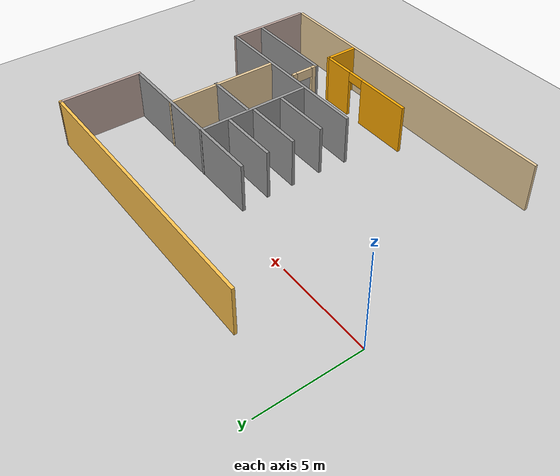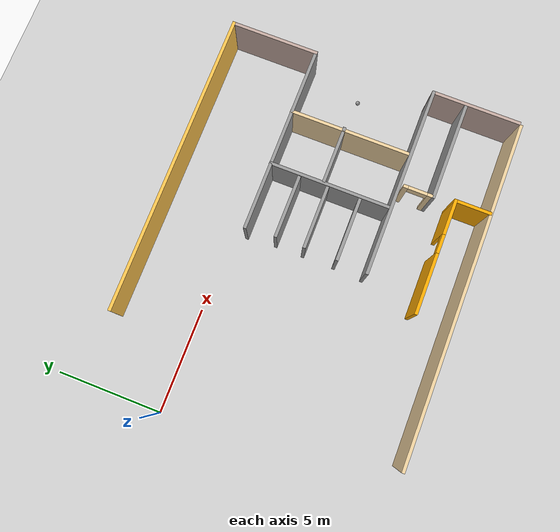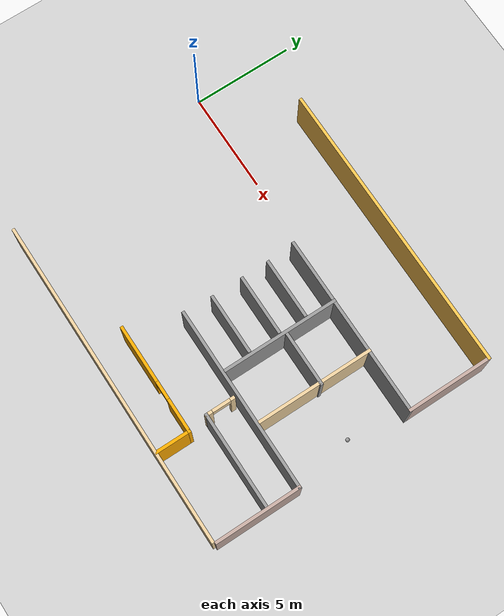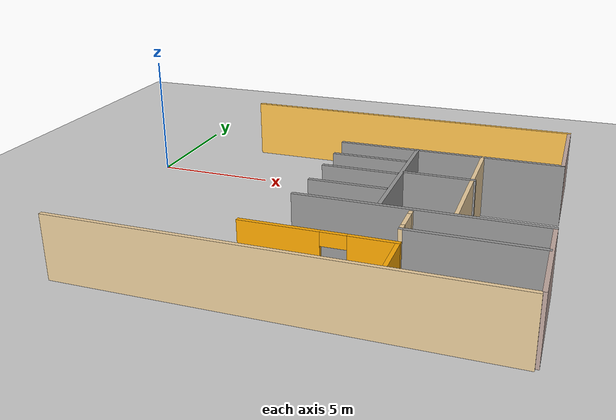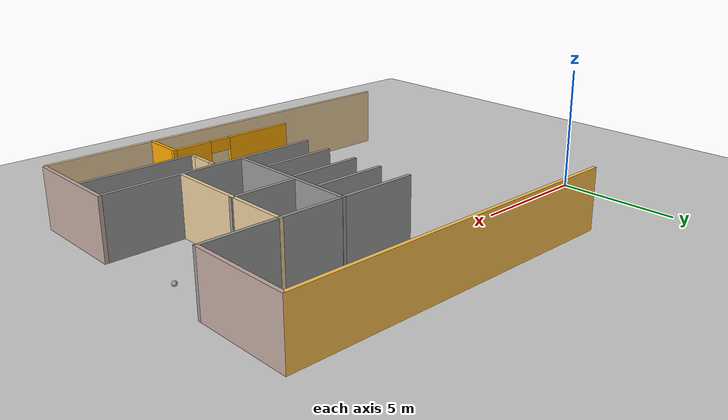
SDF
<sdf version="1.6">
 <world name="default">
  <model name="ground_plane">
   <static>1</static>
   <link name="link">
    <collision name="collision">
     <geometry><plane><normal>0 0 1</normal><size>100 100</size></plane></geometry>
     <surface><friction><ode><mu>100</mu><mu2>50</mu2></ode></friction></surface>
    </collision>
    <visual name="visual">
     <cast_shadows>0</cast_shadows>
     <geometry><plane><normal>0 0 1</normal><size>100 100</size></plane></geometry>
     <material>
      <script><uri>file://media/materials/scripts/gazebo.material</uri><name>Gazebo/Grey</name></script>
     </material>
    </visual>
   </link>
  </model>
  <model name="model">
   <link name="Wall_102">
    <pose>1.73212 1.51954 0 0 -0 0</pose>
    <visual name="Wall_102_Visual">
     <pose>0 0 1.25 0 -0 0</pose>
     <geometry><box><size>3 0.15 2.5</size></box></geometry>
     <material>
      <script><uri>file://media/materials/scripts/gazebo.material</uri><name>Gazebo/Grey</name></script>
      <ambient>1 1 1 1</ambient>
      <shader type="pixel"/>
      <diffuse>0.7 0.7 0.7 1</diffuse>
      <specular>0.01 0.01 0.01 1</specular>
      <emissive>0 0 0 1</emissive>
     </material>
     <meta><layer>0</layer></meta>
    </visual>
    <collision name="Wall_102_Collision">
     <pose>0 0 1.25 0 -0 0</pose>
     <geometry><box><size>3 0.15 2.5</size></box></geometry>
     <surface>
      <friction>
       <ode><mu>1</mu><mu2>1</mu2><fdir1>0 0 0</fdir1><slip1>0</slip1><slip2>0</slip2></ode>
       <torsional>
        <coefficient>1</coefficient>
        <patch_radius>0</patch_radius>
        <surface_radius>0</surface_radius>
        <use_patch_radius>1</use_patch_radius>
        <ode><slip>0</slip></ode>
       </torsional>
      </friction>
      <bounce><restitution_coefficient>0</restitution_coefficient><threshold>1e+06</threshold></bounce>
      <contact>
       <collide_without_contact>0</collide_without_contact>
       <collide_without_contact_bitmask>1</collide_without_contact_bitmask>
       <collide_bitmask>1</collide_bitmask>
       <ode>
        <soft_cfm>0</soft_cfm>
        <soft_erp>0.2</soft_erp>
        <kp>1e+13</kp>
        <kd>1</kd>
        <max_vel>0.01</max_vel>
        <min_depth>0</min_depth>
       </ode>
       <bullet>
        <split_impulse>1</split_impulse>
        <split_impulse_penetration_threshold>-0.01</split_impulse_penetration_threshold>
        <soft_cfm>0</soft_cfm>
        <soft_erp>0.2</soft_erp>
        <kp>1e+13</kp>
        <kd>1</kd>
       </bullet>
      </contact>
     </surface>
    </collision>
   </link>
   <link name="Wall_104">
    <pose>1.73212 0.165926 0 0 -0 0</pose>
    <visual name="Wall_104_Visual">
     <pose>0 0 1.25 0 -0 0</pose>
     <geometry><box><size>3 0.15 2.5</size></box></geometry>
     <material>
      <script><uri>file://media/materials/scripts/gazebo.material</uri><name>Gazebo/Grey</name></script>
      <ambient>1 1 1 1</ambient>
      <shader type="pixel"/>
      <diffuse>0.7 0.7 0.7 1</diffuse>
      <specular>0.01 0.01 0.01 1</specular>
      <emissive>0 0 0 1</emissive>
     </material>
     <meta><layer>0</layer></meta>
    </visual>
    <collision name="Wall_104_Collision">
     <pose>0 0 1.25 0 -0 0</pose>
     <geometry><box><size>3 0.15 2.5</size></box></geometry>
     <surface>
      <friction>
       <ode><mu>1</mu><mu2>1</mu2><fdir1>0 0 0</fdir1><slip1>0</slip1><slip2>0</slip2></ode>
       <torsional>
        <coefficient>1</coefficient>
        <patch_radius>0</patch_radius>
        <surface_radius>0</surface_radius>
        <use_patch_radius>1</use_patch_radius>
        <ode><slip>0</slip></ode>
       </torsional>
      </friction>
      <bounce><restitution_coefficient>0</restitution_coefficient><threshold>1e+06</threshold></bounce>
      <contact>
       <collide_without_contact>0</collide_without_contact>
       <collide_without_contact_bitmask>1</collide_without_contact_bitmask>
       <collide_bitmask>1</collide_bitmask>
       <ode>
        <soft_cfm>0</soft_cfm>
        <soft_erp>0.2</soft_erp>
        <kp>1e+13</kp>
        <kd>1</kd>
        <max_vel>0.01</max_vel>
        <min_depth>0</min_depth>
       </ode>
       <bullet>
        <split_impulse>1</split_impulse>
        <split_impulse_penetration_threshold>-0.01</split_impulse_penetration_threshold>
        <soft_cfm>0</soft_cfm>
        <soft_erp>0.2</soft_erp>
        <kp>1e+13</kp>
        <kd>1</kd>
       </bullet>
      </contact>
     </surface>
    </collision>
   </link>
   <link name="Wall_106">
    <pose>1.73212 -1.37227 0 0 -0 0</pose>
    <visual name="Wall_106_Visual">
     <pose>0 0 1.25 0 -0 0</pose>
     <geometry><box><size>3 0.15 2.5</size></box></geometry>
     <material>
      <script><uri>file://media/materials/scripts/gazebo.material</uri><name>Gazebo/Grey</name></script>
      <ambient>1 1 1 1</ambient>
      <shader type="pixel"/>
      <diffuse>0.7 0.7 0.7 1</diffuse>
      <specular>0.01 0.01 0.01 1</specular>
      <emissive>0 0 0 1</emissive>
     </material>
     <meta><layer>0</layer></meta>
    </visual>
    <collision name="Wall_106_Collision">
     <pose>0 0 1.25 0 -0 0</pose>
     <geometry><box><size>3 0.15 2.5</size></box></geometry>
     <surface>
      <friction>
       <ode><mu>1</mu><mu2>1</mu2><fdir1>0 0 0</fdir1><slip1>0</slip1><slip2>0</slip2></ode>
       <torsional>
        <coefficient>1</coefficient>
        <patch_radius>0</patch_radius>
        <surface_radius>0</surface_radius>
        <use_patch_radius>1</use_patch_radius>
        <ode><slip>0</slip></ode>
       </torsional>
      </friction>
      <bounce><restitution_coefficient>0</restitution_coefficient><threshold>1e+06</threshold></bounce>
      <contact>
       <collide_without_contact>0</collide_without_contact>
       <collide_without_contact_bitmask>1</collide_without_contact_bitmask>
       <collide_bitmask>1</collide_bitmask>
       <ode>
        <soft_cfm>0</soft_cfm>
        <soft_erp>0.2</soft_erp>
        <kp>1e+13</kp>
        <kd>1</kd>
        <max_vel>0.01</max_vel>
        <min_depth>0</min_depth>
       </ode>
       <bullet>
        <split_impulse>1</split_impulse>
        <split_impulse_penetration_threshold>-0.01</split_impulse_penetration_threshold>
        <soft_cfm>0</soft_cfm>
        <soft_erp>0.2</soft_erp>
        <kp>1e+13</kp>
        <kd>1</kd>
       </bullet>
      </contact>
     </surface>
    </collision>
   </link>
   <link name="Wall_13">
    <pose>1.86347 7.025 0 0 -0 0</pose>
    <visual name="Wall_13_Visual">
     <pose>0 0 1.25 0 -0 0</pose>
     <geometry><box><size>14.5 0.15 2.5</size></box></geometry>
     <material>
      <script><uri>file://media/materials/scripts/gazebo.material</uri><name>Gazebo/Grey</name></script>
      <ambient>1 0.764706 0.305882 1</ambient>
      <shader type="pixel"/>
      <diffuse>0.7 0.7 0.7 1</diffuse>
      <specular>0.01 0.01 0.01 1</specular>
      <emissive>0 0 0 1</emissive>
     </material>
     <meta><layer>0</layer></meta>
    </visual>
    <collision name="Wall_13_Collision">
     <pose>0 0 1.25 0 -0 0</pose>
     <geometry><box><size>14.5 0.15 2.5</size></box></geometry>
     <surface>
      <friction>
       <ode><mu>1</mu><mu2>1</mu2><fdir1>0 0 0</fdir1><slip1>0</slip1><slip2>0</slip2></ode>
       <torsional>
        <coefficient>1</coefficient>
        <patch_radius>0</patch_radius>
        <surface_radius>0</surface_radius>
        <use_patch_radius>1</use_patch_radius>
        <ode><slip>0</slip></ode>
       </torsional>
      </friction>
      <bounce><restitution_coefficient>0</restitution_coefficient><threshold>1e+06</threshold></bounce>
      <contact>
       <collide_without_contact>0</collide_without_contact>
       <collide_without_contact_bitmask>1</collide_without_contact_bitmask>
       <collide_bitmask>1</collide_bitmask>
       <ode>
        <soft_cfm>0</soft_cfm>
        <soft_erp>0.2</soft_erp>
        <kp>1e+13</kp>
        <kd>1</kd>
        <max_vel>0.01</max_vel>
        <min_depth>0</min_depth>
       </ode>
       <bullet>
        <split_impulse>1</split_impulse>
        <split_impulse_penetration_threshold>-0.01</split_impulse_penetration_threshold>
        <soft_cfm>0</soft_cfm>
        <soft_erp>0.2</soft_erp>
        <kp>1e+13</kp>
        <kd>1</kd>
       </bullet>
      </contact>
     </surface>
    </collision>
   </link>
   <link name="Wall_24">
    <pose>9.03847 4.975 0 0 0 -1.5708</pose>
    <visual name="Wall_24_Visual">
     <pose>0 0 1.25 0 -0 0</pose>
     <geometry><box><size>4.25 0.15 2.5</size></box></geometry>
     <material>
      <script><uri>file://media/materials/scripts/gazebo.material</uri><name>Gazebo/Grey</name></script>
      <ambient>0.760784 0.662745 0.627451 1</ambient>
      <shader type="pixel"/>
      <diffuse>0.7 0.7 0.7 1</diffuse>
      <specular>0.01 0.01 0.01 1</specular>
      <emissive>0 0 0 1</emissive>
     </material>
     <meta><layer>0</layer></meta>
    </visual>
    <collision name="Wall_24_Collision">
     <pose>0 0 1.25 0 -0 0</pose>
     <geometry><box><size>4.25 0.15 2.5</size></box></geometry>
     <surface>
      <friction>
       <ode><mu>1</mu><mu2>1</mu2><fdir1>0 0 0</fdir1><slip1>0</slip1><slip2>0</slip2></ode>
       <torsional>
        <coefficient>1</coefficient>
        <patch_radius>0</patch_radius>
        <surface_radius>0</surface_radius>
        <use_patch_radius>1</use_patch_radius>
        <ode><slip>0</slip></ode>
       </torsional>
      </friction>
      <bounce><restitution_coefficient>0</restitution_coefficient><threshold>1e+06</threshold></bounce>
      <contact>
       <collide_without_contact>0</collide_without_contact>
       <collide_without_contact_bitmask>1</collide_without_contact_bitmask>
       <collide_bitmask>1</collide_bitmask>
       <ode>
        <soft_cfm>0</soft_cfm>
        <soft_erp>0.2</soft_erp>
        <kp>1e+13</kp>
        <kd>1</kd>
        <max_vel>0.01</max_vel>
        <min_depth>0</min_depth>
       </ode>
       <bullet>
        <split_impulse>1</split_impulse>
        <split_impulse_penetration_threshold>-0.01</split_impulse_penetration_threshold>
        <soft_cfm>0</soft_cfm>
        <soft_erp>0.2</soft_erp>
        <kp>1e+13</kp>
        <kd>1</kd>
       </bullet>
      </contact>
     </surface>
    </collision>
   </link>
   <link name="Wall_26">
    <pose>4.61347 2.925 0 0 -0 3.14159</pose>
    <visual name="Wall_26_Visual">
     <pose>0 0 1.25 0 -0 0</pose>
     <geometry><box><size>9 0.15 2.5</size></box></geometry>
     <material>
      <script><uri>file://media/materials/scripts/gazebo.material</uri><name>Gazebo/Grey</name></script>
      <ambient>1 1 1 1</ambient>
      <shader type="pixel"/>
      <diffuse>0.7 0.7 0.7 1</diffuse>
      <specular>0.01 0.01 0.01 1</specular>
      <emissive>0 0 0 1</emissive>
     </material>
     <meta><layer>0</layer></meta>
    </visual>
    <collision name="Wall_26_Collision">
     <pose>0 0 1.25 0 -0 0</pose>
     <geometry><box><size>9 0.15 2.5</size></box></geometry>
     <surface>
      <friction>
       <ode><mu>1</mu><mu2>1</mu2><fdir1>0 0 0</fdir1><slip1>0</slip1><slip2>0</slip2></ode>
       <torsional>
        <coefficient>1</coefficient>
        <patch_radius>0</patch_radius>
        <surface_radius>0</surface_radius>
        <use_patch_radius>1</use_patch_radius>
        <ode><slip>0</slip></ode>
       </torsional>
      </friction>
      <bounce><restitution_coefficient>0</restitution_coefficient><threshold>1e+06</threshold></bounce>
      <contact>
       <collide_without_contact>0</collide_without_contact>
       <collide_without_contact_bitmask>1</collide_without_contact_bitmask>
       <collide_bitmask>1</collide_bitmask>
       <ode>
        <soft_cfm>0</soft_cfm>
        <soft_erp>0.2</soft_erp>
        <kp>1e+13</kp>
        <kd>1</kd>
        <max_vel>0.01</max_vel>
        <min_depth>0</min_depth>
       </ode>
       <bullet>
        <split_impulse>1</split_impulse>
        <split_impulse_penetration_threshold>-0.01</split_impulse_penetration_threshold>
        <soft_cfm>0</soft_cfm>
        <soft_erp>0.2</soft_erp>
        <kp>1e+13</kp>
        <kd>1</kd>
       </bullet>
      </contact>
     </surface>
    </collision>
   </link>
   <link name="Wall_31">
    <pose>4.68653 -2.80194 0 0 -0 3.14159</pose>
    <visual name="Wall_31_Visual">
     <pose>0 0 1.25 0 -0 0</pose>
     <geometry><box><size>9.1 0.15 2.5</size></box></geometry>
     <material>
      <script><uri>file://media/materials/scripts/gazebo.material</uri><name>Gazebo/Grey</name></script>
      <ambient>1 1 1 1</ambient>
      <shader type="pixel"/>
      <diffuse>0.7 0.7 0.7 1</diffuse>
      <specular>0.01 0.01 0.01 1</specular>
      <emissive>0 0 0 1</emissive>
     </material>
     <meta><layer>0</layer></meta>
    </visual>
    <collision name="Wall_31_Collision">
     <pose>0 0 1.25 0 -0 0</pose>
     <geometry><box><size>9.1 0.15 2.5</size></box></geometry>
     <surface>
      <friction>
       <ode><mu>1</mu><mu2>1</mu2><fdir1>0 0 0</fdir1><slip1>0</slip1><slip2>0</slip2></ode>
       <torsional>
        <coefficient>1</coefficient>
        <patch_radius>0</patch_radius>
        <surface_radius>0</surface_radius>
        <use_patch_radius>1</use_patch_radius>
        <ode><slip>0</slip></ode>
       </torsional>
      </friction>
      <bounce><restitution_coefficient>0</restitution_coefficient><threshold>1e+06</threshold></bounce>
      <contact>
       <collide_without_contact>0</collide_without_contact>
       <collide_without_contact_bitmask>1</collide_without_contact_bitmask>
       <collide_bitmask>1</collide_bitmask>
       <ode>
        <soft_cfm>0</soft_cfm>
        <soft_erp>0.2</soft_erp>
        <kp>1e+13</kp>
        <kd>1</kd>
        <max_vel>0.01</max_vel>
        <min_depth>0</min_depth>
       </ode>
       <bullet>
        <split_impulse>1</split_impulse>
        <split_impulse_penetration_threshold>-0.01</split_impulse_penetration_threshold>
        <soft_cfm>0</soft_cfm>
        <soft_erp>0.2</soft_erp>
        <kp>1e+13</kp>
        <kd>1</kd>
       </bullet>
      </contact>
     </surface>
    </collision>
   </link>
   <link name="Wall_33">
    <pose>6.79379 -4.39131 0 0 -0 3.14159</pose>
    <visual name="Wall_33_Visual">
     <pose>0 0 1.25 0 -0 0</pose>
     <geometry><box><size>4.75 0.15 2.5</size></box></geometry>
     <material>
      <script><uri>file://media/materials/scripts/gazebo.material</uri><name>Gazebo/Grey</name></script>
      <ambient>1 1 1 1</ambient>
      <shader type="pixel"/>
      <diffuse>0.7 0.7 0.7 1</diffuse>
      <specular>0.01 0.01 0.01 1</specular>
      <emissive>0 0 0 1</emissive>
     </material>
     <meta><layer>0</layer></meta>
    </visual>
    <collision name="Wall_33_Collision">
     <pose>0 0 1.25 0 -0 0</pose>
     <geometry><box><size>4.75 0.15 2.5</size></box></geometry>
     <surface>
      <friction>
       <ode><mu>1</mu><mu2>1</mu2><fdir1>0 0 0</fdir1><slip1>0</slip1><slip2>0</slip2></ode>
       <torsional>
        <coefficient>1</coefficient>
        <patch_radius>0</patch_radius>
        <surface_radius>0</surface_radius>
        <use_patch_radius>1</use_patch_radius>
        <ode><slip>0</slip></ode>
       </torsional>
      </friction>
      <bounce><restitution_coefficient>0</restitution_coefficient><threshold>1e+06</threshold></bounce>
      <contact>
       <collide_without_contact>0</collide_without_contact>
       <collide_without_contact_bitmask>1</collide_without_contact_bitmask>
       <collide_bitmask>1</collide_bitmask>
       <ode>
        <soft_cfm>0</soft_cfm>
        <soft_erp>0.2</soft_erp>
        <kp>1e+13</kp>
        <kd>1</kd>
        <max_vel>0.01</max_vel>
        <min_depth>0</min_depth>
       </ode>
       <bullet>
        <split_impulse>1</split_impulse>
        <split_impulse_penetration_threshold>-0.01</split_impulse_penetration_threshold>
        <soft_cfm>0</soft_cfm>
        <soft_erp>0.2</soft_erp>
        <kp>1e+13</kp>
        <kd>1</kd>
       </bullet>
      </contact>
     </surface>
    </collision>
   </link>
   <link name="Wall_7">
    <pose>0.988472 -7.025 0 0 -0 0</pose>
    <visual name="Wall_7_Visual">
     <pose>0 0 1.25 0 -0 0</pose>
     <geometry><box><size>16.25 0.15 2.5</size></box></geometry>
     <material>
      <script><uri>file://media/materials/scripts/gazebo.material</uri><name>Gazebo/Grey</name></script>
      <ambient>0.921569 0.807843 0.615686 1</ambient>
      <shader type="pixel"/>
      <diffuse>0.7 0.7 0.7 1</diffuse>
      <specular>0.01 0.01 0.01 1</specular>
      <emissive>0 0 0 1</emissive>
     </material>
     <meta><layer>0</layer></meta>
    </visual>
    <collision name="Wall_7_Collision">
     <pose>0 0 1.25 0 -0 0</pose>
     <geometry><box><size>16.25 0.15 2.5</size></box></geometry>
     <surface>
      <friction>
       <ode><mu>1</mu><mu2>1</mu2><fdir1>0 0 0</fdir1><slip1>0</slip1><slip2>0</slip2></ode>
       <torsional>
        <coefficient>1</coefficient>
        <patch_radius>0</patch_radius>
        <surface_radius>0</surface_radius>
        <use_patch_radius>1</use_patch_radius>
        <ode><slip>0</slip></ode>
       </torsional>
      </friction>
      <bounce><restitution_coefficient>0</restitution_coefficient><threshold>1e+06</threshold></bounce>
      <contact>
       <collide_without_contact>0</collide_without_contact>
       <collide_without_contact_bitmask>1</collide_without_contact_bitmask>
       <collide_bitmask>1</collide_bitmask>
       <ode>
        <soft_cfm>0</soft_cfm>
        <soft_erp>0.2</soft_erp>
        <kp>1e+13</kp>
        <kd>1</kd>
        <max_vel>0.01</max_vel>
        <min_depth>0</min_depth>
       </ode>
       <bullet>
        <split_impulse>1</split_impulse>
        <split_impulse_penetration_threshold>-0.01</split_impulse_penetration_threshold>
        <soft_cfm>0</soft_cfm>
        <soft_erp>0.2</soft_erp>
        <kp>1e+13</kp>
        <kd>1</kd>
       </bullet>
      </contact>
     </surface>
    </collision>
   </link>
   <link name="Wall_80">
    <pose>4.49379 -3.71631 0 0 -0 1.5708</pose>
    <visual name="Wall_80_Visual_0">
     <pose>-0.566249 0 1.25 0 -0 0</pose>
     <geometry><box><size>0.367502 0.15 2.5</size></box></geometry>
     <material>
      <script><uri>file://media/materials/scripts/gazebo.material</uri><name>Gazebo/Grey</name></script>
      <ambient>0.921569 0.807843 0.615686 1</ambient>
      <shader type="pixel"/>
      <diffuse>0.7 0.7 0.7 1</diffuse>
      <specular>0.01 0.01 0.01 1</specular>
      <emissive>0 0 0 1</emissive>
     </material>
     <meta><layer>0</layer></meta>
    </visual>
    <visual name="Wall_80_Visual_1">
     <pose>0.633751 0 1.25 0 -0 0</pose>
     <geometry><box><size>0.232498 0.15 2.5</size></box></geometry>
     <material>
      <script><uri>file://media/materials/scripts/gazebo.material</uri><name>Gazebo/Grey</name></script>
      <ambient>0.921569 0.807843 0.615686 1</ambient>
      <shader type="pixel"/>
      <diffuse>0.7 0.7 0.7 1</diffuse>
      <specular>0.01 0.01 0.01 1</specular>
      <emissive>0 0 0 1</emissive>
     </material>
     <meta><layer>0</layer></meta>
    </visual>
    <visual name="Wall_80_Visual_2">
     <pose>0.067502 0 2.25 0 -0 0</pose>
     <geometry><box><size>0.9 0.15 0.5</size></box></geometry>
     <material>
      <script><uri>file://media/materials/scripts/gazebo.material</uri><name>Gazebo/Grey</name></script>
      <ambient>0.921569 0.807843 0.615686 1</ambient>
      <shader type="pixel"/>
      <diffuse>0.7 0.7 0.7 1</diffuse>
      <specular>0.01 0.01 0.01 1</specular>
      <emissive>0 0 0 1</emissive>
     </material>
     <meta><layer>0</layer></meta>
    </visual>
    <collision name="Wall_80_Collision_2">
     <pose>0.067502 0 2.25 0 -0 0</pose>
     <geometry><box><size>0.9 0.15 0.5</size></box></geometry>
     <surface>
      <friction>
       <ode><mu>1</mu><mu2>1</mu2><fdir1>0 0 0</fdir1><slip1>0</slip1><slip2>0</slip2></ode>
       <torsional>
        <coefficient>1</coefficient>
        <patch_radius>0</patch_radius>
        <surface_radius>0</surface_radius>
        <use_patch_radius>1</use_patch_radius>
        <ode><slip>0</slip></ode>
       </torsional>
      </friction>
      <bounce><restitution_coefficient>0</restitution_coefficient><threshold>1e+06</threshold></bounce>
      <contact>
       <collide_without_contact>0</collide_without_contact>
       <collide_without_contact_bitmask>1</collide_without_contact_bitmask>
       <collide_bitmask>1</collide_bitmask>
       <ode>
        <soft_cfm>0</soft_cfm>
        <soft_erp>0.2</soft_erp>
        <kp>1e+13</kp>
        <kd>1</kd>
        <max_vel>0.01</max_vel>
        <min_depth>0</min_depth>
       </ode>
       <bullet>
        <split_impulse>1</split_impulse>
        <split_impulse_penetration_threshold>-0.01</split_impulse_penetration_threshold>
        <soft_cfm>0</soft_cfm>
        <soft_erp>0.2</soft_erp>
        <kp>1e+13</kp>
        <kd>1</kd>
       </bullet>
      </contact>
     </surface>
    </collision>
    <collision name="Wall_80_Collision_0">
     <pose>-0.566249 0 1.25 0 -0 0</pose>
     <geometry><box><size>0.367502 0.15 2.5</size></box></geometry>
     <surface>
      <friction>
       <ode><mu>1</mu><mu2>1</mu2><fdir1>0 0 0</fdir1><slip1>0</slip1><slip2>0</slip2></ode>
       <torsional>
        <coefficient>1</coefficient>
        <patch_radius>0</patch_radius>
        <surface_radius>0</surface_radius>
        <use_patch_radius>1</use_patch_radius>
        <ode><slip>0</slip></ode>
       </torsional>
      </friction>
      <bounce><restitution_coefficient>0</restitution_coefficient><threshold>1e+06</threshold></bounce>
      <contact>
       <collide_without_contact>0</collide_without_contact>
       <collide_without_contact_bitmask>1</collide_without_contact_bitmask>
       <collide_bitmask>1</collide_bitmask>
       <ode>
        <soft_cfm>0</soft_cfm>
        <soft_erp>0.2</soft_erp>
        <kp>1e+13</kp>
        <kd>1</kd>
        <max_vel>0.01</max_vel>
        <min_depth>0</min_depth>
       </ode>
       <bullet>
        <split_impulse>1</split_impulse>
        <split_impulse_penetration_threshold>-0.01</split_impulse_penetration_threshold>
        <soft_cfm>0</soft_cfm>
        <soft_erp>0.2</soft_erp>
        <kp>1e+13</kp>
        <kd>1</kd>
       </bullet>
      </contact>
     </surface>
    </collision>
    <collision name="Wall_80_Collision_1">
     <pose>0.633751 0 1.25 0 -0 0</pose>
     <geometry><box><size>0.232498 0.15 2.5</size></box></geometry>
     <surface>
      <friction>
       <ode><mu>1</mu><mu2>1</mu2><fdir1>0 0 0</fdir1><slip1>0</slip1><slip2>0</slip2></ode>
       <torsional>
        <coefficient>1</coefficient>
        <patch_radius>0</patch_radius>
        <surface_radius>0</surface_radius>
        <use_patch_radius>1</use_patch_radius>
        <ode><slip>0</slip></ode>
       </torsional>
      </friction>
      <bounce><restitution_coefficient>0</restitution_coefficient><threshold>1e+06</threshold></bounce>
      <contact>
       <collide_without_contact>0</collide_without_contact>
       <collide_without_contact_bitmask>1</collide_without_contact_bitmask>
       <collide_bitmask>1</collide_bitmask>
       <ode>
        <soft_cfm>0</soft_cfm>
        <soft_erp>0.2</soft_erp>
        <kp>1e+13</kp>
        <kd>1</kd>
        <max_vel>0.01</max_vel>
        <min_depth>0</min_depth>
       </ode>
       <bullet>
        <split_impulse>1</split_impulse>
        <split_impulse_penetration_threshold>-0.01</split_impulse_penetration_threshold>
        <soft_cfm>0</soft_cfm>
        <soft_erp>0.2</soft_erp>
        <kp>1e+13</kp>
        <kd>1</kd>
       </bullet>
      </contact>
     </surface>
    </collision>
   </link>
   <link name="Wall_89">
    <pose>9.16153 -4.85194 0 0 0 -1.5708</pose>
    <visual name="Wall_89_Visual">
     <pose>0 0 1.25 0 -0 0</pose>
     <geometry><box><size>4.25 0.15 2.5</size></box></geometry>
     <material>
      <script><uri>file://media/materials/scripts/gazebo.material</uri><name>Gazebo/Grey</name></script>
      <ambient>0.760784 0.662745 0.627451 1</ambient>
      <shader type="pixel"/>
      <diffuse>0.7 0.7 0.7 1</diffuse>
      <specular>0.01 0.01 0.01 1</specular>
      <emissive>0 0 0 1</emissive>
     </material>
     <meta><layer>0</layer></meta>
    </visual>
    <collision name="Wall_89_Collision">
     <pose>0 0 1.25 0 -0 0</pose>
     <geometry><box><size>4.25 0.15 2.5</size></box></geometry>
     <surface>
      <friction>
       <ode><mu>1</mu><mu2>1</mu2><fdir1>0 0 0</fdir1><slip1>0</slip1><slip2>0</slip2></ode>
       <torsional>
        <coefficient>1</coefficient>
        <patch_radius>0</patch_radius>
        <surface_radius>0</surface_radius>
        <use_patch_radius>1</use_patch_radius>
        <ode><slip>0</slip></ode>
       </torsional>
      </friction>
      <bounce><restitution_coefficient>0</restitution_coefficient><threshold>1e+06</threshold></bounce>
      <contact>
       <collide_without_contact>0</collide_without_contact>
       <collide_without_contact_bitmask>1</collide_without_contact_bitmask>
       <collide_bitmask>1</collide_bitmask>
       <ode>
        <soft_cfm>0</soft_cfm>
        <soft_erp>0.2</soft_erp>
        <kp>1e+13</kp>
        <kd>1</kd>
        <max_vel>0.01</max_vel>
        <min_depth>0</min_depth>
       </ode>
       <bullet>
        <split_impulse>1</split_impulse>
        <split_impulse_penetration_threshold>-0.01</split_impulse_penetration_threshold>
        <soft_cfm>0</soft_cfm>
        <soft_erp>0.2</soft_erp>
        <kp>1e+13</kp>
        <kd>1</kd>
       </bullet>
      </contact>
     </surface>
    </collision>
   </link>
   <link name="Wall_91">
    <pose>4.6756 -6.17131 0 0 -0 1.5708</pose>
    <visual name="Wall_91_Visual">
     <pose>0 0 1.25 0 -0 0</pose>
     <geometry><box><size>1.75 0.15 2.5</size></box></geometry>
     <material>
      <script><uri>file://media/materials/scripts/gazebo.material</uri><name>Gazebo/Grey</name></script>
      <ambient>1 0.666667 0 1</ambient>
      <shader type="pixel"/>
      <diffuse>0.7 0.7 0.7 1</diffuse>
      <specular>0.01 0.01 0.01 1</specular>
      <emissive>0 0 0 1</emissive>
     </material>
     <meta><layer>0</layer></meta>
    </visual>
    <collision name="Wall_91_Collision">
     <pose>0 0 1.25 0 -0 0</pose>
     <geometry><box><size>1.75 0.15 2.5</size></box></geometry>
     <surface>
      <friction>
       <ode><mu>1</mu><mu2>1</mu2><fdir1>0 0 0</fdir1><slip1>0</slip1><slip2>0</slip2></ode>
       <torsional>
        <coefficient>1</coefficient>
        <patch_radius>0</patch_radius>
        <surface_radius>0</surface_radius>
        <use_patch_radius>1</use_patch_radius>
        <ode><slip>0</slip></ode>
       </torsional>
      </friction>
      <bounce><restitution_coefficient>0</restitution_coefficient><threshold>1e+06</threshold></bounce>
      <contact>
       <collide_without_contact>0</collide_without_contact>
       <collide_without_contact_bitmask>1</collide_without_contact_bitmask>
       <collide_bitmask>1</collide_bitmask>
       <ode>
        <soft_cfm>0</soft_cfm>
        <soft_erp>0.2</soft_erp>
        <kp>1e+13</kp>
        <kd>1</kd>
        <max_vel>0.01</max_vel>
        <min_depth>0</min_depth>
       </ode>
       <bullet>
        <split_impulse>1</split_impulse>
        <split_impulse_penetration_threshold>-0.01</split_impulse_penetration_threshold>
        <soft_cfm>0</soft_cfm>
        <soft_erp>0.2</soft_erp>
        <kp>1e+13</kp>
        <kd>1</kd>
       </bullet>
      </contact>
     </surface>
    </collision>
   </link>
   <link name="Wall_92">
    <pose>2.0006 -5.37131 0 0 -0 3.14159</pose>
    <visual name="Wall_92_Visual_0">
     <pose>-1.89153 0 1.25 0 -0 0</pose>
     <geometry><box><size>1.71695 0.15 2.5</size></box></geometry>
     <material>
      <script><uri>file://media/materials/scripts/gazebo.material</uri><name>Gazebo/Grey</name></script>
      <ambient>1 0.666667 0 1</ambient>
      <shader type="pixel"/>
      <diffuse>0.7 0.7 0.7 1</diffuse>
      <specular>0.01 0.01 0.01 1</specular>
      <emissive>0 0 0 1</emissive>
     </material>
     <meta><layer>0</layer></meta>
    </visual>
    <visual name="Wall_92_Visual_1">
     <pose>1.30847 0 1.25 0 -0 0</pose>
     <geometry><box><size>2.88305 0.15 2.5</size></box></geometry>
     <material>
      <script><uri>file://media/materials/scripts/gazebo.material</uri><name>Gazebo/Grey</name></script>
      <ambient>1 0.666667 0 1</ambient>
      <shader type="pixel"/>
      <diffuse>0.7 0.7 0.7 1</diffuse>
      <specular>0.01 0.01 0.01 1</specular>
      <emissive>0 0 0 1</emissive>
     </material>
     <meta><layer>0</layer></meta>
    </visual>
    <visual name="Wall_92_Visual_2">
     <pose>-0.583052 0 2.25 0 -0 0</pose>
     <geometry><box><size>0.9 0.15 0.5</size></box></geometry>
     <material>
      <script><uri>file://media/materials/scripts/gazebo.material</uri><name>Gazebo/Grey</name></script>
      <ambient>1 0.666667 0 1</ambient>
      <shader type="pixel"/>
      <diffuse>0.7 0.7 0.7 1</diffuse>
      <specular>0.01 0.01 0.01 1</specular>
      <emissive>0 0 0 1</emissive>
     </material>
     <meta><layer>0</layer></meta>
    </visual>
    <collision name="Wall_92_Collision_0">
     <pose>-1.89153 0 1.25 0 -0 0</pose>
     <geometry><box><size>1.71695 0.15 2.5</size></box></geometry>
     <surface>
      <friction>
       <ode><mu>1</mu><mu2>1</mu2><fdir1>0 0 0</fdir1><slip1>0</slip1><slip2>0</slip2></ode>
       <torsional>
        <coefficient>1</coefficient>
        <patch_radius>0</patch_radius>
        <surface_radius>0</surface_radius>
        <use_patch_radius>1</use_patch_radius>
        <ode><slip>0</slip></ode>
       </torsional>
      </friction>
      <bounce><restitution_coefficient>0</restitution_coefficient><threshold>1e+06</threshold></bounce>
      <contact>
       <collide_without_contact>0</collide_without_contact>
       <collide_without_contact_bitmask>1</collide_without_contact_bitmask>
       <collide_bitmask>1</collide_bitmask>
       <ode>
        <soft_cfm>0</soft_cfm>
        <soft_erp>0.2</soft_erp>
        <kp>1e+13</kp>
        <kd>1</kd>
        <max_vel>0.01</max_vel>
        <min_depth>0</min_depth>
       </ode>
       <bullet>
        <split_impulse>1</split_impulse>
        <split_impulse_penetration_threshold>-0.01</split_impulse_penetration_threshold>
        <soft_cfm>0</soft_cfm>
        <soft_erp>0.2</soft_erp>
        <kp>1e+13</kp>
        <kd>1</kd>
       </bullet>
      </contact>
     </surface>
    </collision>
    <collision name="Wall_92_Collision_1">
     <pose>1.30847 0 1.25 0 -0 0</pose>
     <geometry><box><size>2.88305 0.15 2.5</size></box></geometry>
     <surface>
      <friction>
       <ode><mu>1</mu><mu2>1</mu2><fdir1>0 0 0</fdir1><slip1>0</slip1><slip2>0</slip2></ode>
       <torsional>
        <coefficient>1</coefficient>
        <patch_radius>0</patch_radius>
        <surface_radius>0</surface_radius>
        <use_patch_radius>1</use_patch_radius>
        <ode><slip>0</slip></ode>
       </torsional>
      </friction>
      <bounce><restitution_coefficient>0</restitution_coefficient><threshold>1e+06</threshold></bounce>
      <contact>
       <collide_without_contact>0</collide_without_contact>
       <collide_without_contact_bitmask>1</collide_without_contact_bitmask>
       <collide_bitmask>1</collide_bitmask>
       <ode>
        <soft_cfm>0</soft_cfm>
        <soft_erp>0.2</soft_erp>
        <kp>1e+13</kp>
        <kd>1</kd>
        <max_vel>0.01</max_vel>
        <min_depth>0</min_depth>
       </ode>
       <bullet>
        <split_impulse>1</split_impulse>
        <split_impulse_penetration_threshold>-0.01</split_impulse_penetration_threshold>
        <soft_cfm>0</soft_cfm>
        <soft_erp>0.2</soft_erp>
        <kp>1e+13</kp>
        <kd>1</kd>
       </bullet>
      </contact>
     </surface>
    </collision>
    <collision name="Wall_92_Collision_2">
     <pose>-0.583052 0 2.25 0 -0 0</pose>
     <geometry><box><size>0.9 0.15 0.5</size></box></geometry>
     <surface>
      <friction>
       <ode><mu>1</mu><mu2>1</mu2><fdir1>0 0 0</fdir1><slip1>0</slip1><slip2>0</slip2></ode>
       <torsional>
        <coefficient>1</coefficient>
        <patch_radius>0</patch_radius>
        <surface_radius>0</surface_radius>
        <use_patch_radius>1</use_patch_radius>
        <ode><slip>0</slip></ode>
       </torsional>
      </friction>
      <bounce><restitution_coefficient>0</restitution_coefficient><threshold>1e+06</threshold></bounce>
      <contact>
       <collide_without_contact>0</collide_without_contact>
       <collide_without_contact_bitmask>1</collide_without_contact_bitmask>
       <collide_bitmask>1</collide_bitmask>
       <ode>
        <soft_cfm>0</soft_cfm>
        <soft_erp>0.2</soft_erp>
        <kp>1e+13</kp>
        <kd>1</kd>
        <max_vel>0.01</max_vel>
        <min_depth>0</min_depth>
       </ode>
       <bullet>
        <split_impulse>1</split_impulse>
        <split_impulse_penetration_threshold>-0.01</split_impulse_penetration_threshold>
        <soft_cfm>0</soft_cfm>
        <soft_erp>0.2</soft_erp>
        <kp>1e+13</kp>
        <kd>1</kd>
       </bullet>
      </contact>
     </surface>
    </collision>
   </link>
   <link name="Wall_94">
    <pose>5.96769 0.13468 0 0 0 -1.5708</pose>
    <visual name="Wall_94_Visual">
     <pose>0 0 1.25 0 -0 0</pose>
     <geometry><box><size>5.75 0.15 2.5</size></box></geometry>
     <material>
      <script><uri>file://media/materials/scripts/gazebo.material</uri><name>Gazebo/Grey</name></script>
      <ambient>0.921569 0.807843 0.615686 1</ambient>
      <shader type="pixel"/>
      <diffuse>0.7 0.7 0.7 1</diffuse>
      <specular>0.01 0.01 0.01 1</specular>
      <emissive>0 0 0 1</emissive>
     </material>
     <meta><layer>0</layer></meta>
    </visual>
    <collision name="Wall_94_Collision">
     <pose>0 0 1.25 0 -0 0</pose>
     <geometry><box><size>5.75 0.15 2.5</size></box></geometry>
     <surface>
      <friction>
       <ode><mu>1</mu><mu2>1</mu2><fdir1>0 0 0</fdir1><slip1>0</slip1><slip2>0</slip2></ode>
       <torsional>
        <coefficient>1</coefficient>
        <patch_radius>0</patch_radius>
        <surface_radius>0</surface_radius>
        <use_patch_radius>1</use_patch_radius>
        <ode><slip>0</slip></ode>
       </torsional>
      </friction>
      <bounce><restitution_coefficient>0</restitution_coefficient><threshold>1e+06</threshold></bounce>
      <contact>
       <collide_without_contact>0</collide_without_contact>
       <collide_without_contact_bitmask>1</collide_without_contact_bitmask>
       <collide_bitmask>1</collide_bitmask>
       <ode>
        <soft_cfm>0</soft_cfm>
        <soft_erp>0.2</soft_erp>
        <kp>1e+13</kp>
        <kd>1</kd>
        <max_vel>0.01</max_vel>
        <min_depth>0</min_depth>
       </ode>
       <bullet>
        <split_impulse>1</split_impulse>
        <split_impulse_penetration_threshold>-0.01</split_impulse_penetration_threshold>
        <soft_cfm>0</soft_cfm>
        <soft_erp>0.2</soft_erp>
        <kp>1e+13</kp>
        <kd>1</kd>
       </bullet>
      </contact>
     </surface>
    </collision>
   </link>
   <link name="Wall_96">
    <pose>3.32199 0.13468 0 0 0 -1.5708</pose>
    <visual name="Wall_96_Visual">
     <pose>0 0 1.25 0 -0 0</pose>
     <geometry><box><size>5.75 0.15 2.5</size></box></geometry>
     <material>
      <script><uri>file://media/materials/scripts/gazebo.material</uri><name>Gazebo/Grey</name></script>
      <ambient>1 1 1 1</ambient>
      <shader type="pixel"/>
      <diffuse>0.7 0.7 0.7 1</diffuse>
      <specular>0.01 0.01 0.01 1</specular>
      <emissive>0 0 0 1</emissive>
     </material>
     <meta><layer>0</layer></meta>
    </visual>
    <collision name="Wall_96_Collision">
     <pose>0 0 1.25 0 -0 0</pose>
     <geometry><box><size>5.75 0.15 2.5</size></box></geometry>
     <surface>
      <friction>
       <ode><mu>1</mu><mu2>1</mu2><fdir1>0 0 0</fdir1><slip1>0</slip1><slip2>0</slip2></ode>
       <torsional>
        <coefficient>1</coefficient>
        <patch_radius>0</patch_radius>
        <surface_radius>0</surface_radius>
        <use_patch_radius>1</use_patch_radius>
        <ode><slip>0</slip></ode>
       </torsional>
      </friction>
      <bounce><restitution_coefficient>0</restitution_coefficient><threshold>1e+06</threshold></bounce>
      <contact>
       <collide_without_contact>0</collide_without_contact>
       <collide_without_contact_bitmask>1</collide_without_contact_bitmask>
       <collide_bitmask>1</collide_bitmask>
       <ode>
        <soft_cfm>0</soft_cfm>
        <soft_erp>0.2</soft_erp>
        <kp>1e+13</kp>
        <kd>1</kd>
        <max_vel>0.01</max_vel>
        <min_depth>0</min_depth>
       </ode>
       <bullet>
        <split_impulse>1</split_impulse>
        <split_impulse_penetration_threshold>-0.01</split_impulse_penetration_threshold>
        <soft_cfm>0</soft_cfm>
        <soft_erp>0.2</soft_erp>
        <kp>1e+13</kp>
        <kd>1</kd>
       </bullet>
      </contact>
     </surface>
    </collision>
   </link>
   <link name="Wall_98">
    <pose>4.72922 0.412037 0 0 -0 3.14159</pose>
    <visual name="Wall_98_Visual">
     <pose>0 0 1.25 0 -0 0</pose>
     <geometry><box><size>2.75 0.15 2.5</size></box></geometry>
     <material>
      <script><uri>file://media/materials/scripts/gazebo.material</uri><name>Gazebo/Grey</name></script>
      <ambient>1 1 1 1</ambient>
      <shader type="pixel"/>
      <diffuse>0.7 0.7 0.7 1</diffuse>
      <specular>0.01 0.01 0.01 1</specular>
      <emissive>0 0 0 1</emissive>
     </material>
     <meta><layer>0</layer></meta>
    </visual>
    <collision name="Wall_98_Collision">
     <pose>0 0 1.25 0 -0 0</pose>
     <geometry><box><size>2.75 0.15 2.5</size></box></geometry>
     <surface>
      <friction>
       <ode><mu>1</mu><mu2>1</mu2><fdir1>0 0 0</fdir1><slip1>0</slip1><slip2>0</slip2></ode>
       <torsional>
        <coefficient>1</coefficient>
        <patch_radius>0</patch_radius>
        <surface_radius>0</surface_radius>
        <use_patch_radius>1</use_patch_radius>
        <ode><slip>0</slip></ode>
       </torsional>
      </friction>
      <bounce><restitution_coefficient>0</restitution_coefficient><threshold>1e+06</threshold></bounce>
      <contact>
       <collide_without_contact>0</collide_without_contact>
       <collide_without_contact_bitmask>1</collide_without_contact_bitmask>
       <collide_bitmask>1</collide_bitmask>
       <ode>
        <soft_cfm>0</soft_cfm>
        <soft_erp>0.2</soft_erp>
        <kp>1e+13</kp>
        <kd>1</kd>
        <max_vel>0.01</max_vel>
        <min_depth>0</min_depth>
       </ode>
       <bullet>
        <split_impulse>1</split_impulse>
        <split_impulse_penetration_threshold>-0.01</split_impulse_penetration_threshold>
        <soft_cfm>0</soft_cfm>
        <soft_erp>0.2</soft_erp>
        <kp>1e+13</kp>
        <kd>1</kd>
       </bullet>
      </contact>
     </surface>
    </collision>
   </link>
   <static>1</static>
   <pose>8.76473 -3.61191 0 0 -0 0</pose>
  </model>
  <model name="my_ball">
   <link name="link_0">
    <pose>-0.753688 0.013596 0 0 -0 0</pose>
    <inertial>
     <mass>1</mass>
     <inertia><ixx>0.1</ixx><ixy>0</ixy><ixz>0</ixz><iyy>0.1</iyy><iyz>0</iyz><izz>0.1</izz></inertia>
    </inertial>
    <visual name="visual">
     <geometry><sphere><radius>0.1</radius></sphere></geometry>
     <material>
      <lighting>1</lighting>
      <script><uri>file://media/materials/scripts/gazebo.material</uri><name>Gazebo/Grey</name></script>
      <shader type="pixel"><normal_map>__default__</normal_map></shader>
      <ambient>1 1 1 1</ambient>
      <diffuse>1 1 1 1</diffuse>
      <specular>1 1 1 1</specular>
      <emissive>1 1 1 1</emissive>
     </material>
    </visual>
    <collision name="collision">
     <geometry><sphere><radius>0.1</radius></sphere></geometry>
     <surface>
      <friction>
       <ode><mu>1</mu><mu2>1</mu2><fdir1>0 0 0</fdir1><slip1>0</slip1><slip2>0</slip2></ode>
       <torsional>
        <coefficient>1</coefficient>
        <patch_radius>0</patch_radius>
        <surface_radius>0</surface_radius>
        <use_patch_radius>1</use_patch_radius>
        <ode><slip>0</slip></ode>
       </torsional>
      </friction>
      <bounce><restitution_coefficient>0</restitution_coefficient><threshold>1e+06</threshold></bounce>
      <contact>
       <collide_without_contact>0</collide_without_contact>
       <collide_without_contact_bitmask>1</collide_without_contact_bitmask>
       <collide_bitmask>1</collide_bitmask>
       <ode>
        <soft_cfm>0</soft_cfm>
        <soft_erp>0.2</soft_erp>
        <kp>1e+13</kp>
        <kd>1</kd>
        <max_vel>0.01</max_vel>
        <min_depth>0</min_depth>
       </ode>
       <bullet>
        <split_impulse>1</split_impulse>
        <split_impulse_penetration_threshold>-0.01</split_impulse_penetration_threshold>
        <soft_cfm>0</soft_cfm>
        <soft_erp>0.2</soft_erp>
        <kp>1e+13</kp>
        <kd>1</kd>
       </bullet>
      </contact>
     </surface>
    </collision>
   </link>
   <static>0</static>
   <pose>17.9142 -3.26628 0.1 0 -0 0</pose>
  </model>
 </world>
</sdf>
